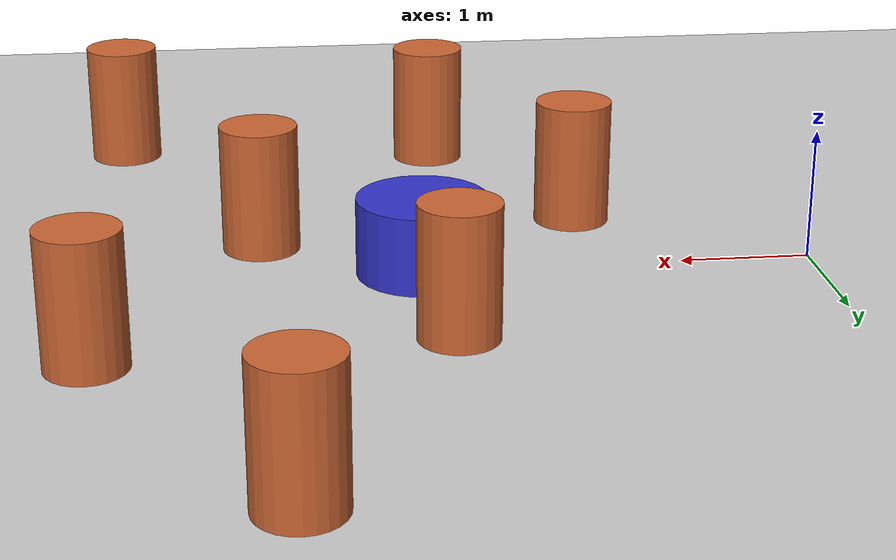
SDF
<?xml version="1.0" ?>
<sdf version='1.8'>
  <world name='test'>

    <!-- Enable ODE physics so collisions are enforced -->
    <physics name='1ms' type='ode'>
      <max_step_size>0.001</max_step_size>
      <real_time_factor>1</real_time_factor>
    </physics>

    <!-- Set geodetic origin so GPS (navsat) sensors produce data -->
    <spherical_coordinates>
      <surface_model>EARTH_WGS84</surface_model>
      <latitude_deg>41.66375</latitude_deg>
      <longitude_deg>13.2818889</longitude_deg>
      <elevation>0.0</elevation>
      <heading_deg>0.0</heading_deg>
    </spherical_coordinates>

    <plugin
        filename="gz-sim-physics-system"
        name="gz::sim::systems::Physics">
    </plugin>
    <plugin
        filename="gz-sim-user-commands-system"
        name="gz::sim::systems::UserCommands">
    </plugin>
    <plugin
        filename="gz-sim-scene-broadcaster-system"
        name="gz::sim::systems::SceneBroadcaster">
    </plugin>
    <plugin
        filename="gz-sim-sensors-system"
        name="gz::sim::systems::Sensors">
        <render_engine>ogre2</render_engine>
    </plugin>
    <plugin
        filename="gz-sim-contact-system"
        name="gz::sim::systems::Contact">
    </plugin>
    <!-- NavSat System plugin to enable GPS -->
    <plugin
        filename="gz-sim-navsat-system"
        name="gz::sim::systems::NavSat">
    </plugin>

    <model name='ground_plane'>
      <static>true</static>
      <link name='link'>
        <collision name='collision'>
          <geometry>
            <plane>
              <normal>0 0 1</normal>
              <size>100 100</size>
            </plane>
          </geometry>
          <surface>
            <friction>
              <ode/>
            </friction>
            <bounce/>
            <contact/>
          </surface>
        </collision>
        <visual name='visual'>
          <geometry>
            <plane>
              <normal>0 0 1</normal>
              <size>100 100</size>
            </plane>
          </geometry>
          <material>
            <ambient>0.8 0.8 0.8 1</ambient>
            <diffuse>0.8 0.8 0.8 1</diffuse>
            <specular>0.8 0.8 0.8 1</specular>
          </material>
        </visual>
        <pose>0 0 0 0 -0 0</pose>
        <inertial>
          <pose>0 0 0 0 -0 0</pose>
          <mass>1</mass>
          <inertia>
            <ixx>1</ixx>
            <ixy>0</ixy>
            <ixz>0</ixz>
            <iyy>1</iyy>
            <iyz>0</iyz>
            <izz>1</izz>
          </inertia>
        </inertial>
        <enable_wind>false</enable_wind>
      </link>
      <pose>0 0 0 0 -0 0</pose>
      <self_collide>false</self_collide>
    </model>

    <!-- Local obstacle replacing Fuel: obstacle_1 -->
    <model name='obstacle_1'>
      <static>true</static>
      <pose>2.8721 1.22966 0.5 0 0 0</pose>
      <link name='link'>
        <visual name='visual'>
          <geometry>
            <cylinder>
              <radius>0.3</radius>
              <length>1.0</length>
            </cylinder>
          </geometry>
          <material>
            <ambient>0.8 0.4 0.2 1</ambient>
            <diffuse>0.8 0.4 0.2 1</diffuse>
          </material>
        </visual>
        <collision name='collision'>
          <geometry>
            <cylinder>
              <radius>0.3</radius>
              <length>1.0</length>
            </cylinder>
          </geometry>
        </collision>
      </link>
    </model>
    <!-- Local obstacle replacing Fuel: obstacle_2 -->
    <model name='obstacle_2'>
      <static>true</static>
      <pose>1.67575 -1.00845 0.5 0 0 0</pose>
      <link name='link'>
        <visual name='visual'>
          <geometry>
            <cylinder>
              <radius>0.3</radius>
              <length>1.0</length>
            </cylinder>
          </geometry>
          <material>
            <ambient>0.8 0.4 0.2 1</ambient>
            <diffuse>0.8 0.4 0.2 1</diffuse>
          </material>
        </visual>
        <collision name='collision'>
          <geometry>
            <cylinder>
              <radius>0.3</radius>
              <length>1.0</length>
            </cylinder>
          </geometry>
        </collision>
      </link>
    </model>
    <!-- Local obstacle replacing Fuel: obstacle_3 -->
    <model name='obstacle_3'>
      <static>true</static>
      <pose>4.19457 -0.635533 0.5 0 0 0</pose>
      <link name='link'>
        <visual name='visual'>
          <geometry>
            <cylinder>
              <radius>0.3</radius>
              <length>1.0</length>
            </cylinder>
          </geometry>
          <material>
            <ambient>0.8 0.4 0.2 1</ambient>
            <diffuse>0.8 0.4 0.2 1</diffuse>
          </material>
        </visual>
        <collision name='collision'>
          <geometry>
            <cylinder>
              <radius>0.3</radius>
              <length>1.0</length>
            </cylinder>
          </geometry>
        </collision>
      </link>
    </model>
    <!-- Local obstacle replacing Fuel: obstacle_4 -->
    <model name='obstacle_4'>
      <static>true</static>
      <pose>5.34007 -3.04639 0.5 0 0 0</pose>
      <link name='link'>
        <visual name='visual'>
          <geometry>
            <cylinder>
              <radius>0.3</radius>
              <length>1.0</length>
            </cylinder>
          </geometry>
          <material>
            <ambient>0.8 0.4 0.2 1</ambient>
            <diffuse>0.8 0.4 0.2 1</diffuse>
          </material>
        </visual>
        <collision name='collision'>
          <geometry>
            <cylinder>
              <radius>0.3</radius>
              <length>1.0</length>
            </cylinder>
          </geometry>
        </collision>
      </link>
    </model>
    <!-- Local obstacle replacing Fuel: obstacle_5 -->
    <model name='obstacle_5'>
      <static>true</static>
      <pose>2.6617 -2.7429 0.5 0 0 0</pose>
      <link name='link'>
        <visual name='visual'>
          <geometry>
            <cylinder>
              <radius>0.3</radius>
              <length>1.0</length>
            </cylinder>
          </geometry>
          <material>
            <ambient>0.8 0.4 0.2 1</ambient>
            <diffuse>0.8 0.4 0.2 1</diffuse>
          </material>
        </visual>
        <collision name='collision'>
          <geometry>
            <cylinder>
              <radius>0.3</radius>
              <length>1.0</length>
            </cylinder>
          </geometry>
        </collision>
      </link>
    </model>
    <!-- Local obstacle replacing Fuel: obstacle_6 -->
    <model name='obstacle_6'>
      <static>true</static>
      <pose>4.07286 3.50308 0.5 0 0 0</pose>
      <link name='link'>
        <visual name='visual'>
          <geometry>
            <cylinder>
              <radius>0.3</radius>
              <length>1.0</length>
            </cylinder>
          </geometry>
          <material>
            <ambient>0.8 0.4 0.2 1</ambient>
            <diffuse>0.8 0.4 0.2 1</diffuse>
          </material>
        </visual>
        <collision name='collision'>
          <geometry>
            <cylinder>
              <radius>0.3</radius>
              <length>1.0</length>
            </cylinder>
          </geometry>
        </collision>
      </link>
    </model>
    <!-- Local obstacle replacing Fuel: obstacle_7 -->
    <model name='obstacle_7'>
      <static>true</static>
      <pose>5.41455 1.43866 0.5 0 0 0</pose>
      <link name='link'>
        <visual name='visual'>
          <geometry>
            <cylinder>
              <radius>0.3</radius>
              <length>1.0</length>
            </cylinder>
          </geometry>
          <material>
            <ambient>0.8 0.4 0.2 1</ambient>
            <diffuse>0.8 0.4 0.2 1</diffuse>
          </material>
        </visual>
        <collision name='collision'>
          <geometry>
            <cylinder>
              <radius>0.3</radius>
              <length>1.0</length>
            </cylinder>
          </geometry>
        </collision>
      </link>
    </model>

    <!-- Solid cylinder obstacle with collision -->
    <model name='test_cylinder'>
      <static>true</static>
      <pose>3 0 0.3 0 0 0</pose>
      <link name='link'>
        <visual name='visual'>
          <geometry>
            <cylinder>
              <radius>0.5</radius>
              <length>0.6</length>
            </cylinder>
          </geometry>
          <material>
            <ambient>0.2 0.2 0.8 1</ambient>
            <diffuse>0.2 0.2 0.8 1</diffuse>
          </material>
        </visual>
        <collision name='collision'>
          <geometry>
            <cylinder>
              <radius>0.5</radius>
              <length>0.6</length>
            </cylinder>
          </geometry>
          <surface>
            <contact/>
            <friction>
              <ode>
                <mu>1.0</mu>
                <mu2>1.0</mu2>
              </ode>
            </friction>
          </surface>
        </collision>
      </link>
    </model>

    <light name='sun' type='directional'>
      <pose>0 0 10 0 -0 0</pose>
      <cast_shadows>true</cast_shadows>
      <intensity>1</intensity>
      <direction>-0.5 0.1 -0.9</direction>
      <diffuse>0.8 0.8 0.8 1</diffuse>
      <specular>0.2 0.2 0.2 1</specular>
      <attenuation>
        <range>1000</range>
        <linear>0.01</linear>
        <constant>0.90000000000000002</constant>
        <quadratic>0.001</quadratic>
      </attenuation>
      <spot>
        <inner_angle>0</inner_angle>
        <outer_angle>0</outer_angle>
        <falloff>0</falloff>
      </spot>
    </light>

  </world>
</sdf>
